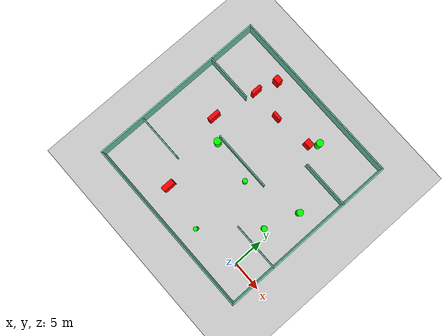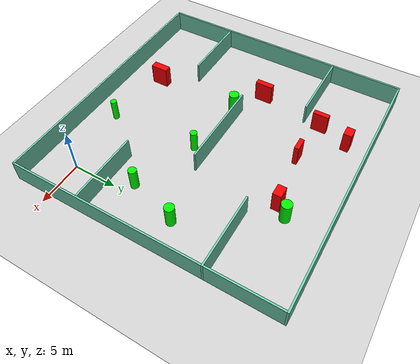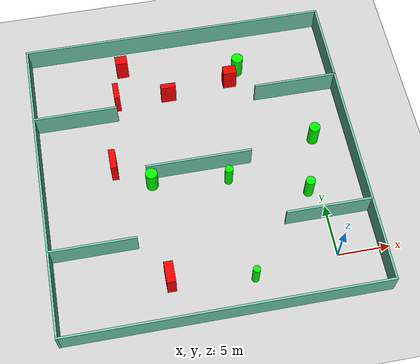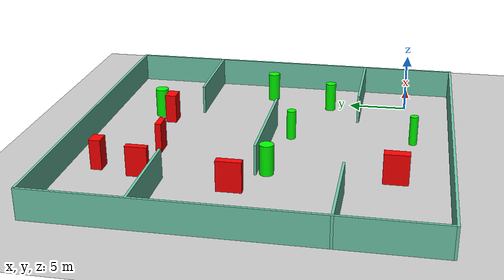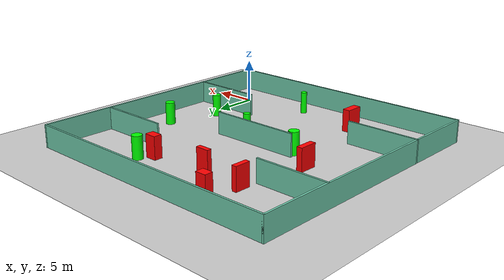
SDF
<sdf version="1.7">
 <world name="default">
  <light name="sun" type="directional">
   <pose>0 0 10 0 -0 0</pose>
   <diffuse>0.8 0.8 0.8 1</diffuse>
   <specular>0.2 0.2 0.2 1</specular>
   <attenuation>
    <range>1000</range>
    <constant>0.9</constant>
    <linear>0.01</linear>
    <quadratic>0.001</quadratic>
   </attenuation>
   <direction>-0.5 0.1 -0.9</direction>
   <spot><inner_angle>0</inner_angle><outer_angle>0</outer_angle><falloff>0</falloff></spot>
  </light>
  <model name="ground_plane">
   <static>1</static>
   <link name="link">
    <collision name="collision">
     <geometry><plane><normal>0 0 1</normal><size>100 100</size></plane></geometry>
     <surface>
      <contact><collide_bitmask>65535</collide_bitmask></contact>
      <friction><ode><mu>100</mu><mu2>50</mu2></ode></friction>
     </surface>
    </collision>
    <visual name="visual">
     <cast_shadows>0</cast_shadows>
     <geometry><plane><normal>0 0 1</normal><size>100 100</size></plane></geometry>
     <material>
      <script><uri>file://media/materials/scripts/gazebo.material</uri><name>Gazebo/Grey</name></script>
     </material>
    </visual>
   </link>
  </model>
  <gravity>0 0 -9.8</gravity>
  <magnetic_field>6e-06 2.3e-05 -4.2e-05</magnetic_field>
  <atmosphere type="adiabatic"/>
  <physics type="ode">
   <max_step_size>0.001</max_step_size>
   <real_time_factor>1</real_time_factor>
   <real_time_update_rate>1000</real_time_update_rate>
  </physics>
  <scene><ambient>0.4 0.4 0.4 1</ambient><background>0.7 0.7 0.7 1</background><shadows>1</shadows></scene>
  <spherical_coordinates>
   <surface_model>EARTH_WGS84</surface_model>
   <latitude_deg>0</latitude_deg>
   <longitude_deg>0</longitude_deg>
   <elevation>0</elevation>
   <heading_deg>0</heading_deg>
  </spherical_coordinates>
  <model name="my_base_walls">
   <link name="Wall_10">
    <collision name="Wall_10_Collision">
     <geometry><box><size>8.2 0.2 2.5</size></box></geometry>
     <pose>0 0 1.25 0 -0 0</pose>
    </collision>
    <visual name="Wall_10_Visual">
     <pose>0 0 1.25 0 -0 0</pose>
     <geometry><box><size>8.2 0.2 2.5</size></box></geometry>
     <material>
      <script><uri>file://media/materials/scripts/gazebo.material</uri><name>Gazebo/Grey</name></script>
      <ambient>0.435294 0.796078 0.67451 1</ambient>
     </material>
     <meta><layer>0</layer></meta>
    </visual>
    <pose>-11 -7 0 0 -0 0</pose>
   </link>
   <link name="Wall_12">
    <collision name="Wall_12_Collision">
     <geometry><box><size>8.2 0.2 2.5</size></box></geometry>
     <pose>0 0 1.25 0 -0 0</pose>
    </collision>
    <visual name="Wall_12_Visual">
     <pose>0 0 1.25 0 -0 0</pose>
     <geometry><box><size>8.2 0.2 2.5</size></box></geometry>
     <material>
      <script><uri>file://media/materials/scripts/gazebo.material</uri><name>Gazebo/Grey</name></script>
      <ambient>0.435294 0.796078 0.67451 1</ambient>
     </material>
     <meta><layer>0</layer></meta>
    </visual>
    <pose>-11 7 0 0 -0 0</pose>
   </link>
   <link name="Wall_14">
    <collision name="Wall_14_Collision">
     <geometry><box><size>8.2 0.2 2.5</size></box></geometry>
     <pose>0 0 1.25 0 -0 0</pose>
    </collision>
    <visual name="Wall_14_Visual">
     <pose>0 0 1.25 0 -0 0</pose>
     <geometry><box><size>8.2 0.2 2.5</size></box></geometry>
     <material>
      <script><uri>file://media/materials/scripts/gazebo.material</uri><name>Gazebo/Grey</name></script>
      <ambient>0.435294 0.796078 0.67451 1</ambient>
     </material>
     <meta><layer>0</layer></meta>
    </visual>
    <pose>11 7 0 0 -0 3.14159</pose>
   </link>
   <link name="Wall_16">
    <collision name="Wall_16_Collision">
     <geometry><box><size>10.2 0.2 2.5</size></box></geometry>
     <pose>0 0 1.25 0 -0 0</pose>
    </collision>
    <visual name="Wall_16_Visual">
     <pose>0 0 1.25 0 -0 0</pose>
     <geometry><box><size>10.2 0.2 2.5</size></box></geometry>
     <material>
      <script><uri>file://media/materials/scripts/gazebo.material</uri><name>Gazebo/Grey</name></script>
      <ambient>0.435294 0.796078 0.67451 1</ambient>
     </material>
     <meta><layer>0</layer></meta>
    </visual>
    <pose>0 0 0 0 -0 3.14159</pose>
   </link>
   <link name="Wall_2">
    <collision name="Wall_2_Collision">
     <geometry><box><size>30.2 0.2 2.5</size></box></geometry>
     <pose>0 0 1.25 0 -0 0</pose>
    </collision>
    <visual name="Wall_2_Visual">
     <pose>0 0 1.25 0 -0 0</pose>
     <geometry><box><size>30.2 0.2 2.5</size></box></geometry>
     <material>
      <script><uri>file://media/materials/scripts/gazebo.material</uri><name>Gazebo/Grey</name></script>
      <ambient>0.435294 0.796078 0.67451 1</ambient>
     </material>
     <meta><layer>0</layer></meta>
    </visual>
    <pose>0 -15 0 0 -0 3.14159</pose>
   </link>
   <link name="Wall_3">
    <collision name="Wall_3_Collision">
     <geometry><box><size>30.2 0.2 2.5</size></box></geometry>
     <pose>0 0 1.25 0 -0 0</pose>
    </collision>
    <visual name="Wall_3_Visual">
     <pose>0 0 1.25 0 -0 0</pose>
     <geometry><box><size>30.2 0.2 2.5</size></box></geometry>
     <material>
      <script><uri>file://media/materials/scripts/gazebo.material</uri><name>Gazebo/Grey</name></script>
      <ambient>0.435294 0.796078 0.67451 1</ambient>
     </material>
     <meta><layer>0</layer></meta>
    </visual>
    <pose>-15 0 0 0 -0 1.5708</pose>
   </link>
   <link name="Wall_4">
    <collision name="Wall_4_Collision">
     <geometry><box><size>30.2 0.2 2.5</size></box></geometry>
     <pose>0 0 1.25 0 -0 0</pose>
    </collision>
    <visual name="Wall_4_Visual">
     <pose>0 0 1.25 0 -0 0</pose>
     <geometry><box><size>30.2 0.2 2.5</size></box></geometry>
     <material>
      <script><uri>file://media/materials/scripts/gazebo.material</uri><name>Gazebo/Grey</name></script>
      <ambient>0.435294 0.796078 0.67451 1</ambient>
     </material>
     <meta><layer>0</layer></meta>
    </visual>
    <pose>0 15 0 0 -0 0</pose>
   </link>
   <link name="Wall_6">
    <collision name="Wall_6_Collision">
     <geometry><box><size>30.2 0.2 2.5</size></box></geometry>
     <pose>0 0 1.25 0 -0 0</pose>
    </collision>
    <visual name="Wall_6_Visual">
     <pose>0 0 1.25 0 -0 0</pose>
     <geometry><box><size>30.2 0.2 2.5</size></box></geometry>
     <material>
      <script><uri>file://media/materials/scripts/gazebo.material</uri><name>Gazebo/Grey</name></script>
      <ambient>0.435294 0.796078 0.67451 1</ambient>
     </material>
     <meta><layer>0</layer></meta>
    </visual>
    <pose>15 0 0 0 -0 1.5708</pose>
   </link>
   <link name="Wall_8">
    <collision name="Wall_8_Collision">
     <geometry><box><size>8.2 0.2 2.5</size></box></geometry>
     <pose>0 0 1.25 0 -0 0</pose>
    </collision>
    <visual name="Wall_8_Visual">
     <pose>0 0 1.25 0 -0 0</pose>
     <geometry><box><size>8.2 0.2 2.5</size></box></geometry>
     <material>
      <script><uri>file://media/materials/scripts/gazebo.material</uri><name>Gazebo/Grey</name></script>
      <ambient>0.435294 0.796078 0.67451 1</ambient>
     </material>
     <meta><layer>0</layer></meta>
    </visual>
    <pose>11 -7 0 0 -0 3.14159</pose>
   </link>
   <static>1</static>
   <pose>-11 11 0 0 -0 0</pose>
  </model>
  <model name="cylinder1">
   <static>1</static>
   <link name="link">
    <inertial>
     <mass>1</mass>
     <inertia><ixx>0.5</ixx><ixy>0</ixy><ixz>0</ixz><iyy>0.5</iyy><iyz>0</iyz><izz>1</izz></inertia>
    </inertial>
    <collision name="collision">
     <geometry><cylinder><radius>0.5229028715582719</radius><length>2.5</length></cylinder></geometry>
    </collision>
    <visual name="visual">
     <geometry><cylinder><radius>0.5229028715582719</radius><length>2.5</length></cylinder></geometry>
     <material>
      <ambient>0 1 0 1</ambient>
      <diffuse>0 1 0 1</diffuse>
      <specular>0.1 0.1 0.1 1</specular>
      <emissive>0 0 0 0</emissive>
     </material>
    </visual>
   </link>
   <pose>0.5956674083953644 12.318134489393591 1.25 0 0 0</pose>
  </model>
  <model name="cylinder2">
   <static>1</static>
   <link name="link">
    <inertial>
     <mass>1</mass>
     <inertia><ixx>0.5</ixx><ixy>0</ixy><ixz>0</ixz><iyy>0.5</iyy><iyz>0</iyz><izz>1</izz></inertia>
    </inertial>
    <collision name="collision">
     <geometry><cylinder><radius>0.3882722765278981</radius><length>2.5</length></cylinder></geometry>
    </collision>
    <visual name="visual">
     <geometry><cylinder><radius>0.3882722765278981</radius><length>2.5</length></cylinder></geometry>
     <material>
      <ambient>0 1 0 1</ambient>
      <diffuse>0 1 0 1</diffuse>
      <specular>0.1 0.1 0.1 1</specular>
      <emissive>0 0 0 0</emissive>
     </material>
    </visual>
   </link>
   <pose>-8.42080822193741 9.31751680933716 1.25 0 0 0</pose>
  </model>
  <model name="cylinder3">
   <static>1</static>
   <link name="link">
    <inertial>
     <mass>1</mass>
     <inertia><ixx>0.5</ixx><ixy>0</ixy><ixz>0</ixz><iyy>0.5</iyy><iyz>0</iyz><izz>1</izz></inertia>
    </inertial>
    <collision name="collision">
     <geometry><cylinder><radius>0.5725883798210389</radius><length>2.5</length></cylinder></geometry>
    </collision>
    <visual name="visual">
     <geometry><cylinder><radius>0.5725883798210389</radius><length>2.5</length></cylinder></geometry>
     <material>
      <ambient>0 1 0 1</ambient>
      <diffuse>0 1 0 1</diffuse>
      <specular>0.1 0.1 0.1 1</specular>
      <emissive>0 0 0 0</emissive>
     </material>
    </visual>
   </link>
   <pose>-15.685880134148952 10.153639647757712 1.25 0 0 0</pose>
  </model>
  <model name="cylinder4">
   <static>1</static>
   <link name="link">
    <inertial>
     <mass>1</mass>
     <inertia><ixx>0.5</ixx><ixy>0</ixy><ixz>0</ixz><iyy>0.5</iyy><iyz>0</iyz><izz>1</izz></inertia>
    </inertial>
    <collision name="collision">
     <geometry><cylinder><radius>0.5667675079603677</radius><length>2.5</length></cylinder></geometry>
    </collision>
    <visual name="visual">
     <geometry><cylinder><radius>0.5667675079603677</radius><length>2.5</length></cylinder></geometry>
     <material>
      <ambient>0 1 0 1</ambient>
      <diffuse>0 1 0 1</diffuse>
      <specular>0.1 0.1 0.1 1</specular>
      <emissive>0 0 0 0</emissive>
     </material>
    </visual>
   </link>
   <pose>-5.186011210497652 21.592899398876675 1.25 0 0 0</pose>
  </model>
  <model name="cylinder5">
   <static>1</static>
   <link name="link">
    <inertial>
     <mass>1</mass>
     <inertia><ixx>0.5</ixx><ixy>0</ixy><ixz>0</ixz><iyy>0.5</iyy><iyz>0</iyz><izz>1</izz></inertia>
    </inertial>
    <collision name="collision">
     <geometry><cylinder><radius>0.3423717704933228</radius><length>2.5</length></cylinder></geometry>
    </collision>
    <visual name="visual">
     <geometry><cylinder><radius>0.3423717704933228</radius><length>2.5</length></cylinder></geometry>
     <material>
      <ambient>0 1 0 1</ambient>
      <diffuse>0 1 0 1</diffuse>
      <specular>0.1 0.1 0.1 1</specular>
      <emissive>0 0 0 0</emissive>
     </material>
    </visual>
   </link>
   <pose>-7.939108006374971 -0.9251189936060249 1.25 0 0 0</pose>
  </model>
  <model name="cylinder6">
   <static>1</static>
   <link name="link">
    <inertial>
     <mass>1</mass>
     <inertia><ixx>0.5</ixx><ixy>0</ixy><ixz>0</ixz><iyy>0.5</iyy><iyz>0</iyz><izz>1</izz></inertia>
    </inertial>
    <collision name="collision">
     <geometry><cylinder><radius>0.4558407155126431</radius><length>2.5</length></cylinder></geometry>
    </collision>
    <visual name="visual">
     <geometry><cylinder><radius>0.4558407155126431</radius><length>2.5</length></cylinder></geometry>
     <material>
      <ambient>0 1 0 1</ambient>
      <diffuse>0 1 0 1</diffuse>
      <specular>0.1 0.1 0.1 1</specular>
      <emissive>0 0 0 0</emissive>
     </material>
    </visual>
   </link>
   <pose>-1.1694717644310302 6.752777264394188 1.25 0 0 0</pose>
  </model>
  <model name="box1">
   <static>1</static>
   <link name="link">
    <inertial>
     <mass>1</mass>
     <inertia><ixx>0.083</ixx><ixy>0</ixy><ixz>0</ixz><iyy>0.083</iyy><iyz>0</iyz><izz>0.083</izz></inertia>
    </inertial>
    <collision name="collision">
     <geometry><box><size>1.2987266484006625 0.9365136958569785 2.5</size></box></geometry>
    </collision>
    <visual name="visual">
     <geometry><box><size>1.2987266484006625 0.9365136958569785 2.5</size></box></geometry>
     <material>
      <ambient>1 0 0 1</ambient>
      <diffuse>1 0 0 1</diffuse>
      <specular>0.1 0.1 0.1 1</specular>
      <emissive>0 0 0 0</emissive>
     </material>
    </visual>
    <sensor name="my_contact" type="contact">
     <contact><collision>box_collision</collision><topic>__default_topic__</topic></contact>
    </sensor>
   </link>
   <pose>-6.224539831127423 20.35005580245688 1.25 0 0 0</pose>
  </model>
  <model name="box2">
   <static>1</static>
   <link name="link">
    <inertial>
     <mass>1</mass>
     <inertia><ixx>0.083</ixx><ixy>0</ixy><ixz>0</ixz><iyy>0.083</iyy><iyz>0</iyz><izz>0.083</izz></inertia>
    </inertial>
    <collision name="collision">
     <geometry><box><size>1.4852926157483064 0.5160882829254929 2.5</size></box></geometry>
    </collision>
    <visual name="visual">
     <geometry><box><size>1.4852926157483064 0.5160882829254929 2.5</size></box></geometry>
     <material>
      <ambient>1 0 0 1</ambient>
      <diffuse>1 0 0 1</diffuse>
      <specular>0.1 0.1 0.1 1</specular>
      <emissive>0 0 0 0</emissive>
     </material>
    </visual>
    <sensor name="my_contact" type="contact">
     <contact><collision>box_collision</collision><topic>__default_topic__</topic></contact>
    </sensor>
   </link>
   <pose>-12.586094875464342 19.563736143539554 1.25 0 0 0</pose>
  </model>
  <model name="box3">
   <static>1</static>
   <link name="link">
    <inertial>
     <mass>1</mass>
     <inertia><ixx>0.083</ixx><ixy>0</ixy><ixz>0</ixz><iyy>0.083</iyy><iyz>0</iyz><izz>0.083</izz></inertia>
    </inertial>
    <collision name="collision">
     <geometry><box><size>0.8365980235108457 2.0047531497295346 2.5</size></box></geometry>
    </collision>
    <visual name="visual">
     <geometry><box><size>0.8365980235108457 2.0047531497295346 2.5</size></box></geometry>
     <material>
      <ambient>1 0 0 1</ambient>
      <diffuse>1 0 0 1</diffuse>
      <specular>0.1 0.1 0.1 1</specular>
      <emissive>0 0 0 0</emissive>
     </material>
    </visual>
    <sensor name="my_contact" type="contact">
     <contact><collision>box_collision</collision><topic>__default_topic__</topic></contact>
    </sensor>
   </link>
   <pose>-15.557422109283227 0.2007090733721819 1.25 0 0 0</pose>
  </model>
  <model name="box4">
   <static>1</static>
   <link name="link">
    <inertial>
     <mass>1</mass>
     <inertia><ixx>0.083</ixx><ixy>0</ixy><ixz>0</ixz><iyy>0.083</iyy><iyz>0</iyz><izz>0.083</izz></inertia>
    </inertial>
    <collision name="collision">
     <geometry><box><size>0.5429181563017051 1.7501531450983958 2.5</size></box></geometry>
    </collision>
    <visual name="visual">
     <geometry><box><size>0.5429181563017051 1.7501531450983958 2.5</size></box></geometry>
     <material>
      <ambient>1 0 0 1</ambient>
      <diffuse>1 0 0 1</diffuse>
      <specular>0.1 0.1 0.1 1</specular>
      <emissive>0 0 0 0</emissive>
     </material>
    </visual>
    <sensor name="my_contact" type="contact">
     <contact><collision>box_collision</collision><topic>__default_topic__</topic></contact>
    </sensor>
   </link>
   <pose>-17.74237972455231 19.922959995284145 1.25 0 0 0</pose>
  </model>
  <model name="box5">
   <static>1</static>
   <link name="link">
    <inertial>
     <mass>1</mass>
     <inertia><ixx>0.083</ixx><ixy>0</ixy><ixz>0</ixz><iyy>0.083</iyy><iyz>0</iyz><izz>0.083</izz></inertia>
    </inertial>
    <collision name="collision">
     <geometry><box><size>0.6219225014689294 2.017584206857972 2.5</size></box></geometry>
    </collision>
    <visual name="visual">
     <geometry><box><size>0.6219225014689294 2.017584206857972 2.5</size></box></geometry>
     <material>
      <ambient>1 0 0 1</ambient>
      <diffuse>1 0 0 1</diffuse>
      <specular>0.1 0.1 0.1 1</specular>
      <emissive>0 0 0 0</emissive>
     </material>
    </visual>
    <sensor name="my_contact" type="contact">
     <contact><collision>box_collision</collision><topic>__default_topic__</topic></contact>
    </sensor>
   </link>
   <pose>-19.05390071359164 12.38128698191452 1.25 0 0 0</pose>
  </model>
  <model name="box6">
   <static>1</static>
   <link name="link">
    <inertial>
     <mass>1</mass>
     <inertia><ixx>0.083</ixx><ixy>0</ixy><ixz>0</ixz><iyy>0.083</iyy><iyz>0</iyz><izz>0.083</izz></inertia>
    </inertial>
    <collision name="collision">
     <geometry><box><size>1.191681417746563 0.9224223681353017 2.5</size></box></geometry>
    </collision>
    <visual name="visual">
     <geometry><box><size>1.191681417746563 0.9224223681353017 2.5</size></box></geometry>
     <material>
      <ambient>1 0 0 1</ambient>
      <diffuse>1 0 0 1</diffuse>
      <specular>0.1 0.1 0.1 1</specular>
      <emissive>0 0 0 0</emissive>
     </material>
    </visual>
    <sensor name="my_contact" type="contact">
     <contact><collision>box_collision</collision><topic>__default_topic__</topic></contact>
    </sensor>
   </link>
   <pose>-16.765097274711934 23.452341691915862 1.25 0 0 0</pose>
  </model>
 </world>
</sdf>
